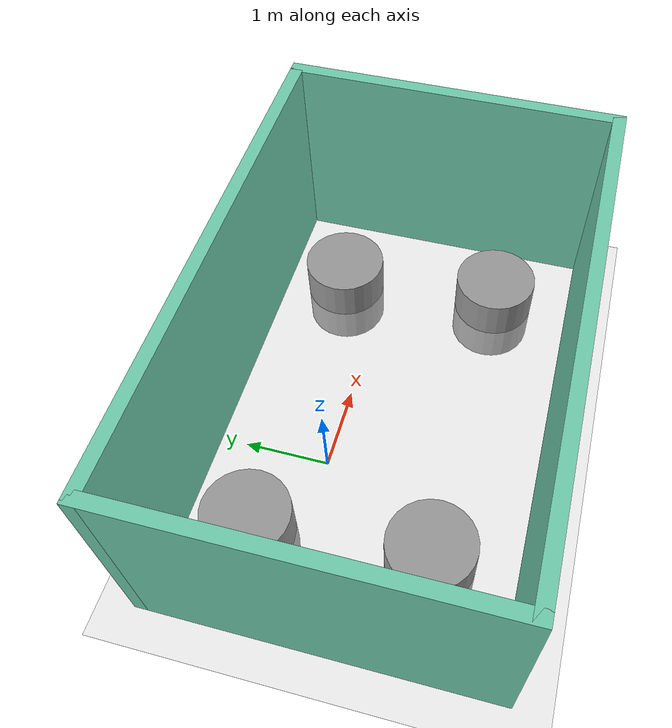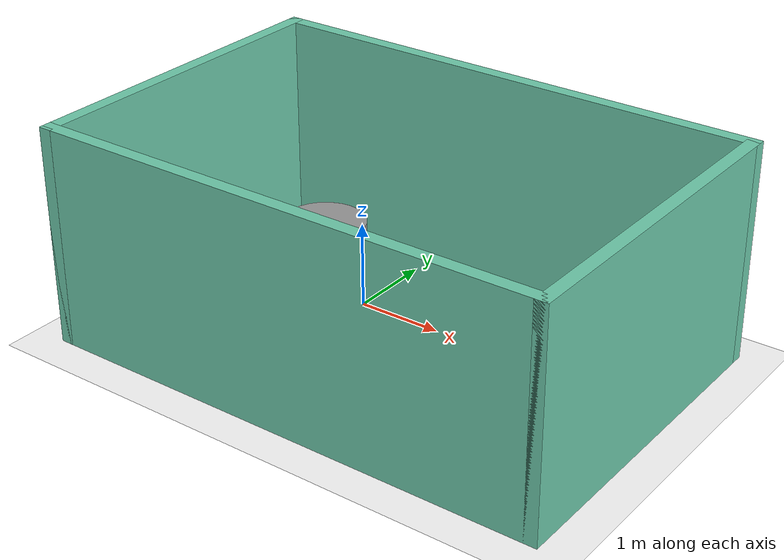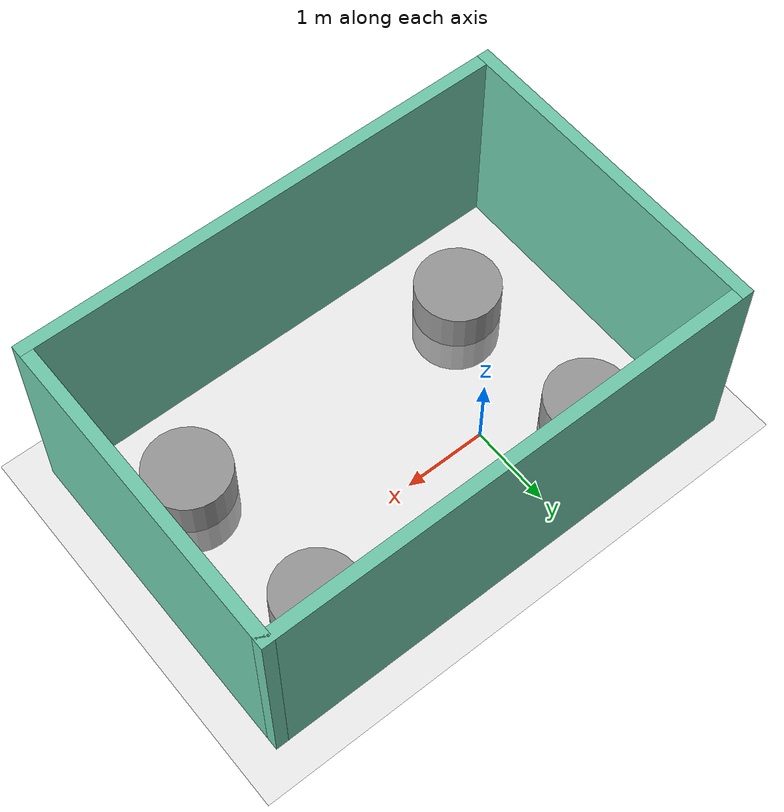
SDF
<sdf version="1.7">
 <world name="default">
  <light name="sun" type="directional">
   <pose>0 0 10 0 -0 0</pose>
   <diffuse>0.8 0.8 0.8 1</diffuse>
   <specular>0.2 0.2 0.2 1</specular>
   <attenuation>
    <range>1000</range>
    <constant>0.9</constant>
    <linear>0.01</linear>
    <quadratic>0.001</quadratic>
   </attenuation>
   <direction>-0.5 0.1 -0.9</direction>
   <spot><inner_angle>0</inner_angle><outer_angle>0</outer_angle><falloff>0</falloff></spot>
  </light>
  <model name="ground_plane">
   <static>1</static>
   <link name="link">
    <collision name="collision">
     <geometry><plane><normal>0 0 1</normal><size>100 100</size></plane></geometry>
     <surface>
      <contact><collide_bitmask>65535</collide_bitmask></contact>
      <friction><ode><mu>100</mu><mu2>50</mu2></ode></friction>
     </surface>
    </collision>
    <visual name="visual">
     <cast_shadows>0</cast_shadows>
     <geometry><plane><normal>0 0 1</normal><size>100 100</size></plane></geometry>
     <material>
      <script><uri>file://media/materials/scripts/gazebo.material</uri><name>Gazebo/Grey</name></script>
     </material>
    </visual>
   </link>
  </model>
  <gravity>0 0 -9.8</gravity>
  <magnetic_field>6e-06 2.3e-05 -4.2e-05</magnetic_field>
  <atmosphere type="adiabatic"/>
  <physics type="ode">
   <max_step_size>0.001</max_step_size>
   <real_time_factor>1</real_time_factor>
   <real_time_update_rate>1000</real_time_update_rate>
  </physics>
  <scene><ambient>0.4 0.4 0.4 1</ambient><background>0.7 0.7 0.7 1</background><shadows>1</shadows></scene>
  <spherical_coordinates>
   <surface_model>EARTH_WGS84</surface_model>
   <latitude_deg>0</latitude_deg>
   <longitude_deg>0</longitude_deg>
   <elevation>0</elevation>
   <heading_deg>0</heading_deg>
  </spherical_coordinates>
  <model name="pool">
   <pose>0.880148 -0.537396 0 0 -0 0</pose>
   <link name="Wall_1">
    <collision name="Wall_1_Collision">
     <geometry><box><size>4 0.15 2.5</size></box></geometry>
     <pose>0 0 1.25 0 -0 0</pose>
    </collision>
    <visual name="Wall_1_Visual">
     <pose>0 0 1.25 0 -0 0</pose>
     <geometry><box><size>4 0.15 2.5</size></box></geometry>
     <material>
      <script><uri>file://media/materials/scripts/gazebo.material</uri><name>Gazebo/Grey</name></script>
      <ambient>0.435294 0.796078 0.67451 1</ambient>
     </material>
     <meta><layer>0</layer></meta>
    </visual>
    <pose>-2.925 -0 0 0 -0 -1.5708</pose>
   </link>
   <link name="Wall_2">
    <collision name="Wall_2_Collision">
     <geometry><box><size>6 0.15 2.5</size></box></geometry>
     <pose>0 0 1.25 0 -0 0</pose>
    </collision>
    <visual name="Wall_2_Visual">
     <pose>0 0 1.25 0 -0 0</pose>
     <geometry><box><size>6 0.15 2.5</size></box></geometry>
     <material>
      <script><uri>file://media/materials/scripts/gazebo.material</uri><name>Gazebo/Grey</name></script>
      <ambient>0.435294 0.796078 0.67451 1</ambient>
     </material>
     <meta><layer>0</layer></meta>
    </visual>
    <pose>-0 -1.925 0 0 -0 0</pose>
   </link>
   <link name="Wall_3">
    <collision name="Wall_3_Collision">
     <geometry><box><size>4 0.15 2.5</size></box></geometry>
     <pose>0 0 1.25 0 -0 0</pose>
    </collision>
    <visual name="Wall_3_Visual">
     <pose>0 0 1.25 0 -0 0</pose>
     <geometry><box><size>4 0.15 2.5</size></box></geometry>
     <material>
      <script><uri>file://media/materials/scripts/gazebo.material</uri><name>Gazebo/Grey</name></script>
      <ambient>0.435294 0.796078 0.67451 1</ambient>
     </material>
     <meta><layer>0</layer></meta>
    </visual>
    <pose>2.925 -0 0 0 -0 1.5708</pose>
   </link>
   <link name="Wall_4">
    <collision name="Wall_4_Collision">
     <geometry><box><size>6 0.15 2.5</size></box></geometry>
     <pose>0 0 1.25 0 -0 0</pose>
    </collision>
    <visual name="Wall_4_Visual">
     <pose>0 0 1.25 0 -0 0</pose>
     <geometry><box><size>6 0.15 2.5</size></box></geometry>
     <material>
      <script><uri>file://media/materials/scripts/gazebo.material</uri><name>Gazebo/Grey</name></script>
      <ambient>0.435294 0.796078 0.67451 1</ambient>
     </material>
     <meta><layer>0</layer></meta>
    </visual>
    <pose>-0 1.925 0 0 -0 3.14159</pose>
   </link>
   <static>1</static>
  </model>
  <model name="pool1.world">
   <link name="link">
    <inertial>
     <mass>1</mass>
     <inertia><ixx>0.145833</ixx><ixy>0</ixy><ixz>0</ixz><iyy>0.145833</iyy><iyz>0</iyz><izz>0.125</izz></inertia>
    </inertial>
    <visual name="visual">
     <geometry><cylinder><radius>0.5</radius><length>1</length></cylinder></geometry>
     <material>
      <script><name>Gazebo/Grey</name><uri>file://media/materials/scripts/gazebo.material</uri></script>
      <shader type="pixel"><normal_map>__default__</normal_map></shader>
      <ambient>0.3 0.3 0.3 1</ambient>
      <diffuse>0.7 0.7 0.7 1</diffuse>
      <specular>0.01 0.01 0.01 1</specular>
      <emissive>0 0 0 1</emissive>
     </material>
    </visual>
    <collision name="collision">
     <geometry><cylinder><radius>0.3</radius><length>1</length></cylinder></geometry>
     <surface>
      <friction>
       <ode><mu>1</mu><mu2>1</mu2><fdir1>0 0 0</fdir1><slip1>0</slip1><slip2>0</slip2></ode>
       <torsional>
        <coefficient>1</coefficient>
        <patch_radius>0</patch_radius>
        <surface_radius>0</surface_radius>
        <use_patch_radius>1</use_patch_radius>
        <ode><slip>0</slip></ode>
       </torsional>
      </friction>
      <bounce><restitution_coefficient>0</restitution_coefficient><threshold>1e+06</threshold></bounce>
      <contact>
       <collide_without_contact>0</collide_without_contact>
       <collide_without_contact_bitmask>1</collide_without_contact_bitmask>
       <collide_bitmask>1</collide_bitmask>
       <ode>
        <soft_cfm>0</soft_cfm>
        <soft_erp>0.2</soft_erp>
        <kp>1e+13</kp>
        <kd>1</kd>
        <max_vel>0.01</max_vel>
        <min_depth>0</min_depth>
       </ode>
       <bullet>
        <split_impulse>1</split_impulse>
        <split_impulse_penetration_threshold>-0.01</split_impulse_penetration_threshold>
        <soft_cfm>0</soft_cfm>
        <soft_erp>0.2</soft_erp>
        <kp>1e+13</kp>
        <kd>1</kd>
       </bullet>
      </contact>
     </surface>
    </collision>
   </link>
   <link name="link_clone">
    <inertial>
     <mass>1</mass>
     <inertia><ixx>0.145833</ixx><ixy>0</ixy><ixz>0</ixz><iyy>0.145833</iyy><iyz>0</iyz><izz>0.125</izz></inertia>
    </inertial>
    <pose>-3.70784 -0.005413 1.5e-05 3e-06 4e-06 -0</pose>
    <visual name="visual">
     <geometry><cylinder><radius>0.5</radius><length>1</length></cylinder></geometry>
     <material>
      <script><name>Gazebo/Grey</name><uri>file://media/materials/scripts/gazebo.material</uri></script>
      <shader type="pixel"><normal_map>__default__</normal_map></shader>
      <ambient>0.3 0.3 0.3 1</ambient>
      <diffuse>0.7 0.7 0.7 1</diffuse>
      <specular>0.01 0.01 0.01 1</specular>
      <emissive>0 0 0 1</emissive>
     </material>
    </visual>
    <collision name="collision">
     <geometry><cylinder><radius>0.3</radius><length>1</length></cylinder></geometry>
     <surface>
      <friction>
       <ode><mu>1</mu><mu2>1</mu2><fdir1>0 0 0</fdir1><slip1>0</slip1><slip2>0</slip2></ode>
       <torsional>
        <coefficient>1</coefficient>
        <patch_radius>0</patch_radius>
        <surface_radius>0</surface_radius>
        <use_patch_radius>1</use_patch_radius>
        <ode><slip>0</slip></ode>
       </torsional>
      </friction>
      <bounce><restitution_coefficient>0</restitution_coefficient><threshold>1e+06</threshold></bounce>
      <contact>
       <collide_without_contact>0</collide_without_contact>
       <collide_without_contact_bitmask>1</collide_without_contact_bitmask>
       <collide_bitmask>1</collide_bitmask>
       <ode>
        <soft_cfm>0</soft_cfm>
        <soft_erp>0.2</soft_erp>
        <kp>1e+13</kp>
        <kd>1</kd>
        <max_vel>0.01</max_vel>
        <min_depth>0</min_depth>
       </ode>
       <bullet>
        <split_impulse>1</split_impulse>
        <split_impulse_penetration_threshold>-0.01</split_impulse_penetration_threshold>
        <soft_cfm>0</soft_cfm>
        <soft_erp>0.2</soft_erp>
        <kp>1e+13</kp>
        <kd>1</kd>
       </bullet>
      </contact>
     </surface>
    </collision>
   </link>
   <link name="link_clone_0">
    <inertial>
     <mass>1</mass>
     <inertia><ixx>0.145833</ixx><ixy>0</ixy><ixz>0</ixz><iyy>0.145833</iyy><iyz>0</iyz><izz>0.125</izz></inertia>
    </inertial>
    <pose>-3.85725 1.99438 2.2e-05 3e-06 4e-06 -0</pose>
    <visual name="visual">
     <geometry><cylinder><radius>0.5</radius><length>1</length></cylinder></geometry>
     <material>
      <script><name>Gazebo/Grey</name><uri>file://media/materials/scripts/gazebo.material</uri></script>
      <shader type="pixel"><normal_map>__default__</normal_map></shader>
      <ambient>0.3 0.3 0.3 1</ambient>
      <diffuse>0.7 0.7 0.7 1</diffuse>
      <specular>0.01 0.01 0.01 1</specular>
      <emissive>0 0 0 1</emissive>
     </material>
    </visual>
    <collision name="collision">
     <geometry><cylinder><radius>0.3</radius><length>1</length></cylinder></geometry>
     <surface>
      <friction>
       <ode><mu>1</mu><mu2>1</mu2><fdir1>0 0 0</fdir1><slip1>0</slip1><slip2>0</slip2></ode>
       <torsional>
        <coefficient>1</coefficient>
        <patch_radius>0</patch_radius>
        <surface_radius>0</surface_radius>
        <use_patch_radius>1</use_patch_radius>
        <ode><slip>0</slip></ode>
       </torsional>
      </friction>
      <bounce><restitution_coefficient>0</restitution_coefficient><threshold>1e+06</threshold></bounce>
      <contact>
       <collide_without_contact>0</collide_without_contact>
       <collide_without_contact_bitmask>1</collide_without_contact_bitmask>
       <collide_bitmask>1</collide_bitmask>
       <ode>
        <soft_cfm>0</soft_cfm>
        <soft_erp>0.2</soft_erp>
        <kp>1e+13</kp>
        <kd>1</kd>
        <max_vel>0.01</max_vel>
        <min_depth>0</min_depth>
       </ode>
       <bullet>
        <split_impulse>1</split_impulse>
        <split_impulse_penetration_threshold>-0.01</split_impulse_penetration_threshold>
        <soft_cfm>0</soft_cfm>
        <soft_erp>0.2</soft_erp>
        <kp>1e+13</kp>
        <kd>1</kd>
       </bullet>
      </contact>
     </surface>
    </collision>
   </link>
   <link name="link_clone_1">
    <inertial>
     <mass>1</mass>
     <inertia><ixx>0.145833</ixx><ixy>0</ixy><ixz>0</ixz><iyy>0.145833</iyy><iyz>0</iyz><izz>0.125</izz></inertia>
    </inertial>
    <pose>-0.186852 1.97174 7e-06 3e-06 4e-06 -0</pose>
    <visual name="visual">
     <geometry><cylinder><radius>0.5</radius><length>1</length></cylinder></geometry>
     <material>
      <script><name>Gazebo/Grey</name><uri>file://media/materials/scripts/gazebo.material</uri></script>
      <shader type="pixel"><normal_map>__default__</normal_map></shader>
      <ambient>0.3 0.3 0.3 1</ambient>
      <diffuse>0.7 0.7 0.7 1</diffuse>
      <specular>0.01 0.01 0.01 1</specular>
      <emissive>0 0 0 1</emissive>
     </material>
    </visual>
    <collision name="collision">
     <geometry><cylinder><radius>0.3</radius><length>1</length></cylinder></geometry>
     <surface>
      <friction>
       <ode><mu>1</mu><mu2>1</mu2><fdir1>0 0 0</fdir1><slip1>0</slip1><slip2>0</slip2></ode>
       <torsional>
        <coefficient>1</coefficient>
        <patch_radius>0</patch_radius>
        <surface_radius>0</surface_radius>
        <use_patch_radius>1</use_patch_radius>
        <ode><slip>0</slip></ode>
       </torsional>
      </friction>
      <bounce><restitution_coefficient>0</restitution_coefficient><threshold>1e+06</threshold></bounce>
      <contact>
       <collide_without_contact>0</collide_without_contact>
       <collide_without_contact_bitmask>1</collide_without_contact_bitmask>
       <collide_bitmask>1</collide_bitmask>
       <ode>
        <soft_cfm>0</soft_cfm>
        <soft_erp>0.2</soft_erp>
        <kp>1e+13</kp>
        <kd>1</kd>
        <max_vel>0.01</max_vel>
        <min_depth>0</min_depth>
       </ode>
       <bullet>
        <split_impulse>1</split_impulse>
        <split_impulse_penetration_threshold>-0.01</split_impulse_penetration_threshold>
        <soft_cfm>0</soft_cfm>
        <soft_erp>0.2</soft_erp>
        <kp>1e+13</kp>
        <kd>1</kd>
       </bullet>
      </contact>
     </surface>
    </collision>
   </link>
   <static>0</static>
   <pose>2.85137 -1.41865 0 0 -0 0</pose>
  </model>
 </world>
</sdf>
